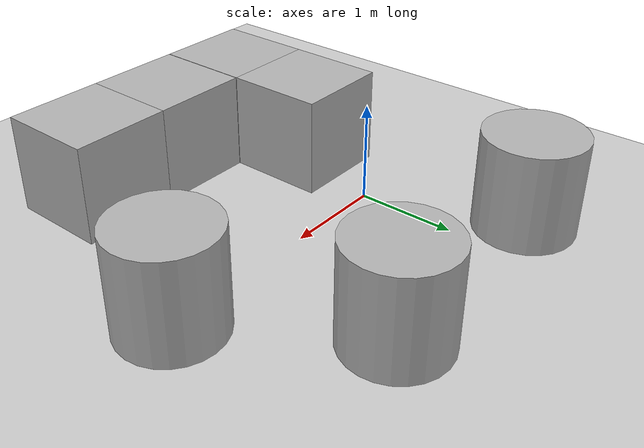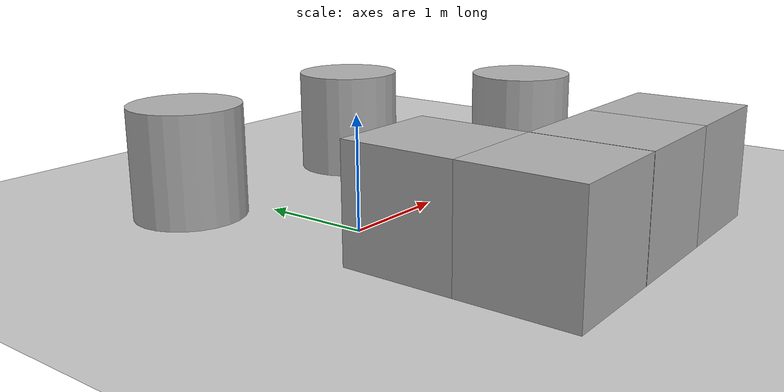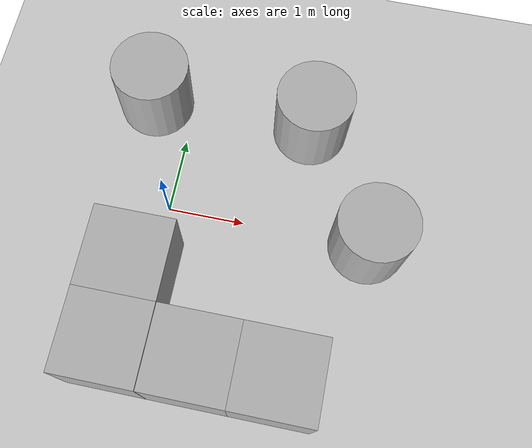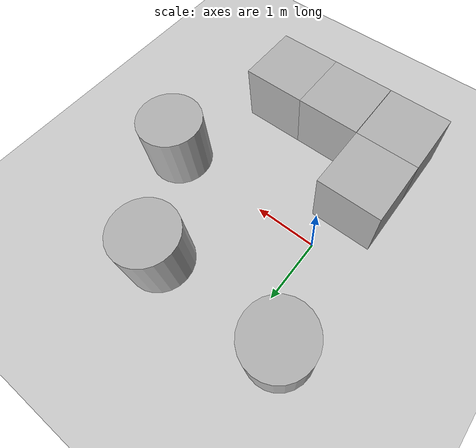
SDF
<sdf version='1.9'>
  <world name='empty'>
    <physics name='1ms' type='ignored'>
      <max_step_size>0.001</max_step_size>
      <real_time_factor>1</real_time_factor>
      <real_time_update_rate>1000</real_time_update_rate>
    </physics>
    <plugin name='gz::sim::systems::Physics' filename='gz-sim-physics-system'/>
    <plugin name='gz::sim::systems::UserCommands' filename='gz-sim-user-commands-system'/>
    <plugin name='gz::sim::systems::SceneBroadcaster' filename='gz-sim-scene-broadcaster-system'/>
    <plugin name='gz::sim::systems::Sensors' filename='gz-sim-sensors-system'>
      <render_engine>ogre2</render_engine>
    </plugin>
    <plugin name='gz::sim::systems::Contact' filename='gz-sim-contact-system'/>
    <gravity>0 0 -9.8000000000000007</gravity>
    <magnetic_field>5.5644999999999998e-06 2.2875799999999999e-05 -4.2388400000000002e-05</magnetic_field>
    <atmosphere type='adiabatic'/>
    <scene>
      <ambient>0.400000006 0.400000006 0.400000006 1</ambient>
      <background>0.699999988 0.699999988 0.699999988 1</background>
      <shadows>true</shadows>
    </scene>
    <model name='ground_plane'>
      <static>true</static>
      <link name='link'>
        <collision name='collision'>
          <geometry>
            <plane>
              <normal>0 0 1</normal>
              <size>100 100</size>
            </plane>
          </geometry>
          <surface>
            <friction>
              <ode/>
            </friction>
            <bounce/>
            <contact/>
          </surface>
        </collision>
        <visual name='visual'>
          <geometry>
            <plane>
              <normal>0 0 1</normal>
              <size>100 100</size>
            </plane>
          </geometry>
          <material>
            <ambient>0.800000012 0.800000012 0.800000012 1</ambient>
            <diffuse>0.800000012 0.800000012 0.800000012 1</diffuse>
            <specular>0.800000012 0.800000012 0.800000012 1</specular>
          </material>
        </visual>
        <pose>0 0 0 0 0 0</pose>
        <inertial>
          <pose>0 0 0 0 0 0</pose>
          <mass>1</mass>
          <inertia>
            <ixx>1</ixx>
            <ixy>0</ixy>
            <ixz>0</ixz>
            <iyy>1</iyy>
            <iyz>0</iyz>
            <izz>1</izz>
          </inertia>
        </inertial>
        <enable_wind>false</enable_wind>
      </link>
      <pose>0 0 0 0 0 0</pose>
      <self_collide>false</self_collide>
    </model>

    <model name='box_1'>
      <pose>1.8029219467110664 -1.9402323017846799 0.49999999990199806 6.2287739151293738e-22 9.3279666454713669e-22 -3.6315533669320137e-22</pose>
      <link name='box_1_link'>
        <inertial>
          <inertia>
            <ixx>0.16666</ixx>
            <ixy>0</ixy>
            <ixz>0</ixz>
            <iyy>0.16666</iyy>
            <iyz>0</iyz>
            <izz>0.16666</izz>
          </inertia>
          <mass>1</mass>
          <pose>0 0 0 0 0 0</pose>
        </inertial>
        <collision name='box_1_collision'>
          <geometry>
            <box>
              <size>1 1 1</size>
            </box>
          </geometry>
          <surface>
            <friction>
              <ode/>
            </friction>
            <bounce/>
            <contact/>
          </surface>
        </collision>
        <visual name='box_1_visual'>
          <geometry>
            <box>
              <size>1 1 1</size>
            </box>
          </geometry>
          <material>
            <ambient>0.300000012 0.300000012 0.300000012 1</ambient>
            <diffuse>0.699999988 0.699999988 0.699999988 1</diffuse>
            <specular>1 1 1 1</specular>
          </material>
        </visual>
        <pose>0 0 0 0 0 0</pose>
        <enable_wind>false</enable_wind>
      </link>
      <static>false</static>
      <self_collide>false</self_collide>
    </model>

    <model name='box_2'>
      <pose>0.8029219467110664 -1.9402323017846799 0.49999999990199806 6.2287739151293738e-22 9.3279666454713669e-22 -3.6315533669320137e-22</pose>
      <link name='box_2_link'>
        <inertial>
          <inertia>
            <ixx>0.16666</ixx>
            <ixy>0</ixy>
            <ixz>0</ixz>
            <iyy>0.16666</iyy>
            <iyz>0</iyz>
            <izz>0.16666</izz>
          </inertia>
          <mass>1</mass>
          <pose>0 0 0 0 0 0</pose>
        </inertial>
        <collision name='box_2_collision'>
          <geometry>
            <box>
              <size>1 1 1</size>
            </box>
          </geometry>
          <surface>
            <friction>
              <ode/>
            </friction>
            <bounce/>
            <contact/>
          </surface>
        </collision>
        <visual name='box_2_visual'>
          <geometry>
            <box>
              <size>1 1 1</size>
            </box>
          </geometry>
          <material>
            <ambient>0.300000012 0.300000012 0.300000012 1</ambient>
            <diffuse>0.699999988 0.699999988 0.699999988 1</diffuse>
            <specular>1 1 1 1</specular>
          </material>
        </visual>
        <pose>0 0 0 0 0 0</pose>
        <enable_wind>false</enable_wind>
      </link>
      <static>false</static>
      <self_collide>false</self_collide>
    </model>

    <model name='box_3'>
      <pose>-0.2029219467110664 -1.9402323017846799 0.49999999990199806 6.2287739151293738e-22 9.3279666454713669e-22 -3.6315533669320137e-22</pose>
      <link name='box_3_link'>
        <inertial>
          <inertia>
            <ixx>0.16666</ixx>
            <ixy>0</ixy>
            <ixz>0</ixz>
            <iyy>0.16666</iyy>
            <iyz>0</iyz>
            <izz>0.16666</izz>
          </inertia>
          <mass>1</mass>
          <pose>0 0 0 0 0 0</pose>
        </inertial>
        <collision name='box_3_collision'>
          <geometry>
            <box>
              <size>1 1 1</size>
            </box>
          </geometry>
          <surface>
            <friction>
              <ode/>
            </friction>
            <bounce/>
            <contact/>
          </surface>
        </collision>
        <visual name='box_3_visual'>
          <geometry>
            <box>
              <size>1 1 1</size>
            </box>
          </geometry>
          <material>
            <ambient>0.300000012 0.300000012 0.300000012 1</ambient>
            <diffuse>0.699999988 0.699999988 0.699999988 1</diffuse>
            <specular>1 1 1 1</specular>
          </material>
        </visual>
        <pose>0 0 0 0 0 0</pose>
        <enable_wind>false</enable_wind>
      </link>
      <static>false</static>
      <self_collide>false</self_collide>
    </model>

    <model name='box_4'>
      <pose>-0.2029219467110664 -0.9402323017846799 0.49999999990199806 6.2287739151293738e-22 9.3279666454713669e-22 -3.6315533669320137e-22</pose>
      <link name='box_4_link'>
        <inertial>
          <inertia>
            <ixx>0.16666</ixx>
            <ixy>0</ixy>
            <ixz>0</ixz>
            <iyy>0.16666</iyy>
            <iyz>0</iyz>
            <izz>0.16666</izz>
          </inertia>
          <mass>1</mass>
          <pose>0 0 0 0 0 0</pose>
        </inertial>
        <collision name='box_4_collision'>
          <geometry>
            <box>
              <size>1 1 1</size>
            </box>
          </geometry>
          <surface>
            <friction>
              <ode/>
            </friction>
            <bounce/>
            <contact/>
          </surface>
        </collision>
        <visual name='box_4_visual'>
          <geometry>
            <box>
              <size>1 1 1</size>
            </box>
          </geometry>
          <material>
            <ambient>0.300000012 0.300000012 0.300000012 1</ambient>
            <diffuse>0.699999988 0.699999988 0.699999988 1</diffuse>
            <specular>1 1 1 1</specular>
          </material>
        </visual>
        <pose>0 0 0 0 0 0</pose>
        <enable_wind>false</enable_wind>
      </link>
      <static>false</static>
      <self_collide>false</self_collide>
    </model>

    <model name='cylinder'>
      <pose>1.6278173043812618 1.5029515542140965 0.49999942638036005 2.4289046005190011e-20 1.5754678275059134e-20 -9.0169543863959e-21</pose>
      <link name='cylinder_link'>
        <inertial>
          <inertia>
            <ixx>0.14580000000000001</ixx>
            <ixy>0</ixy>
            <ixz>0</ixz>
            <iyy>0.14580000000000001</iyy>
            <iyz>0</iyz>
            <izz>0.125</izz>
          </inertia>
          <mass>1</mass>
          <pose>0 0 0 0 0 0</pose>
        </inertial>
        <collision name='cylinder_collision'>
          <geometry>
            <cylinder>
              <radius>0.5</radius>
              <length>1</length>
            </cylinder>
          </geometry>
          <surface>
            <friction>
              <ode/>
            </friction>
            <bounce/>
            <contact/>
          </surface>
        </collision>
        <visual name='cylinder_visual'>
          <geometry>
            <cylinder>
              <radius>0.5</radius>
              <length>1</length>
            </cylinder>
          </geometry>
          <material>
            <ambient>0.300000012 0.300000012 0.300000012 1</ambient>
            <diffuse>0.699999988 0.699999988 0.699999988 1</diffuse>
            <specular>1 1 1 1</specular>
          </material>
        </visual>
        <pose>0 0 0 0 0 0</pose>
        <enable_wind>false</enable_wind>
      </link>
      <static>false</static>
      <self_collide>false</self_collide>
    </model>

    <model name='cylinder_2'>
      <pose>2.6278173043812618 0.0029515542140965 0.49999942638036005 2.4289046005190011e-20 1.5754678275059134e-20 -9.0169543863959e-21</pose>
      <link name='cylinder_2_link'>
        <inertial>
          <inertia>
            <ixx>0.14580000000000001</ixx>
            <ixy>0</ixy>
            <ixz>0</ixz>
            <iyy>0.14580000000000001</iyy>
            <iyz>0</iyz>
            <izz>0.125</izz>
          </inertia>
          <mass>1</mass>
          <pose>0 0 0 0 0 0</pose>
        </inertial>
        <collision name='cylinder_2_collision'>
          <geometry>
            <cylinder>
              <radius>0.5</radius>
              <length>1</length>
            </cylinder>
          </geometry>
          <surface>
            <friction>
              <ode/>
            </friction>
            <bounce/>
            <contact/>
          </surface>
        </collision>
        <visual name='cylinder_2_visual'>
          <geometry>
            <cylinder>
              <radius>0.5</radius>
              <length>1</length>
            </cylinder>
          </geometry>
          <material>
            <ambient>0.300000012 0.300000012 0.300000012 1</ambient>
            <diffuse>0.699999988 0.699999988 0.699999988 1</diffuse>
            <specular>1 1 1 1</specular>
          </material>
        </visual>
        <pose>0 0 0 0 0 0</pose>
        <enable_wind>false</enable_wind>
      </link>
      <static>false</static>
      <self_collide>false</self_collide>
    </model>

    <model name='cylinder_3'>
      <pose>-0.5278173043812618 1.5029515542140965 0.49999942638036005 2.4289046005190011e-20 1.5754678275059134e-20 -9.0169543863959e-21</pose>
      <link name='cylinder_3_link'>
        <inertial>
          <inertia>
            <ixx>0.14580000000000001</ixx>
            <ixy>0</ixy>
            <ixz>0</ixz>
            <iyy>0.14580000000000001</iyy>
            <iyz>0</iyz>
            <izz>0.125</izz>
          </inertia>
          <mass>1</mass>
          <pose>0 0 0 0 0 0</pose>
        </inertial>
        <collision name='cylinder_3_collision'>
          <geometry>
            <cylinder>
              <radius>0.5</radius>
              <length>1</length>
            </cylinder>
          </geometry>
          <surface>
            <friction>
              <ode/>
            </friction>
            <bounce/>
            <contact/>
          </surface>
        </collision>
        <visual name='cylinder_3_visual'>
          <geometry>
            <cylinder>
              <radius>0.5</radius>
              <length>1</length>
            </cylinder>
          </geometry>
          <material>
            <ambient>0.300000012 0.300000012 0.300000012 1</ambient>
            <diffuse>0.699999988 0.699999988 0.699999988 1</diffuse>
            <specular>1 1 1 1</specular>
          </material>
        </visual>
        <pose>0 0 0 0 0 0</pose>
        <enable_wind>false</enable_wind>
      </link>
      <static>false</static>
      <self_collide>false</self_collide>
    </model>

    <light name='sun' type='directional'>
      <pose>0 0 10 0 0 0</pose>
      <cast_shadows>true</cast_shadows>
      <intensity>1</intensity>
      <direction>-0.5 0.10000000000000001 -0.90000000000000002</direction>
      <diffuse>0.800000012 0.800000012 0.800000012 1</diffuse>
      <specular>0.200000003 0.200000003 0.200000003 1</specular>
      <attenuation>
        <range>1000</range>
        <linear>0.01</linear>
        <constant>0.90000000000000002</constant>
        <quadratic>0.001</quadratic>
      </attenuation>
      <spot>
        <inner_angle>0</inner_angle>
        <outer_angle>0</outer_angle>
        <falloff>0</falloff>
      </spot>
    </light>
  </world>
</sdf>
